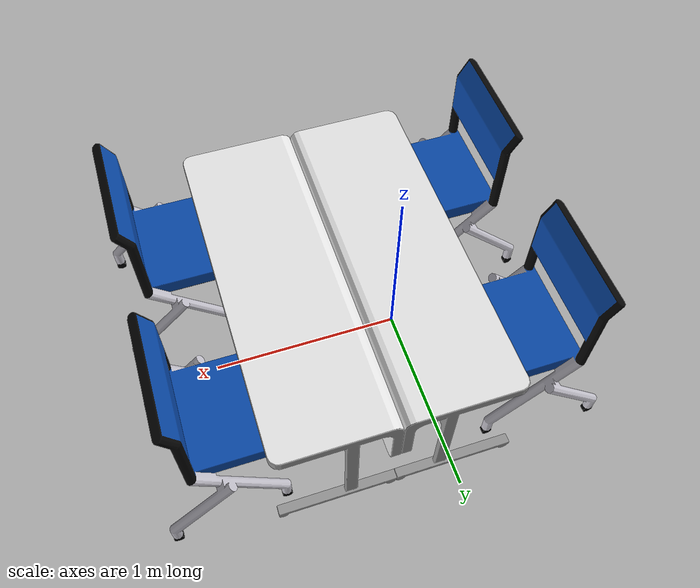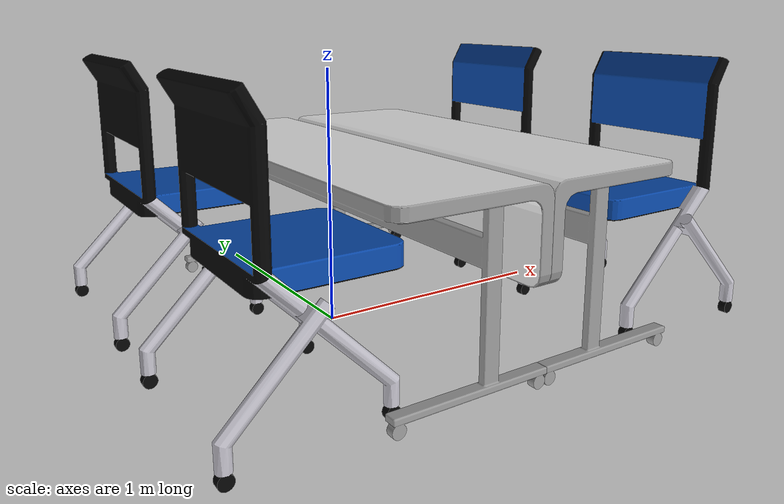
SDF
<?xml version='1.0'?>
<sdf version="1.6">
  <model name="table_set">
    <self_collide>true</self_collide>
    <link name="long_table1">
      <pose>0 0 0 0 0 0</pose>
      <inertial>
        <pose>0.087 0 0.587 0 0 0</pose>
        <mass>9.1</mass>
        <inertia>
          <ixx>2.7818</ixx>
          <ixy>0.0</ixy>
          <ixz>0.0766</ixz>
          <iyy>0.4542</iyy>
          <iyz>0.0</iyz>
          <izz>2.9349</izz>
        </inertia>
      </inertial>
      <collision name="collision">
        <geometry>
          <mesh>
            <uri>model://long_table/long_table.dae</uri>
          </mesh>
        </geometry>
      </collision>
      <visual name="visual">
        <geometry>
          <mesh>
            <uri>model://long_table/long_table.dae</uri>
          </mesh>
        </geometry>
      </visual>
    </link>

    <link name="long_table2">
      <pose>0.6 0 0 0 0 3.14</pose>
      <inertial>
        <pose>0.087 0 0.587 0 0 0</pose>
        <mass>9.1</mass>
        <inertia>
          <ixx>2.7818</ixx>
          <ixy>0.0</ixy>
          <ixz>0.0766</ixz>
          <iyy>0.4542</iyy>
          <iyz>0.0</iyz>
          <izz>2.9349</izz>
        </inertia>
      </inertial>
      <collision name="collision">
        <geometry>
          <mesh>
            <uri>model://long_table/long_table.dae</uri>
          </mesh>
        </geometry>
      </collision>
      <visual name="visual">
        <geometry>
          <mesh>
            <uri>model://long_table/long_table.dae</uri>
          </mesh>
        </geometry>
      </visual>
    </link>

    <link name="chair_link1">
      <pose>-0.4 -0.5 0 0 0 0</pose>
      <inertial>
        <pose>-0.084 0 0.572 0 0 0</pose>
        <mass>3.5</mass>
        <inertia>
          <ixx>1.4596</ixx>
          <ixy>0.0</ixy>
          <ixz>0.2280</ixz>
          <iyy>1.4595</iyy>
          <iyz>0.0</iyz>
          <izz>0.2478</izz>
        </inertia>
      </inertial>
      <collision name="collision">
        <geometry>
          <mesh>
            <uri>model://chair/chair.dae</uri>
          </mesh>
        </geometry>
      </collision>
      <visual name="visual">
        <geometry>
          <mesh>
            <uri>model://chair/chair.dae</uri>
          </mesh>
        </geometry>
      </visual>
    </link>

    <link name="chair_link2">
      <pose>-0.4 0.5 0 0 0 0</pose>
      <inertial>
        <pose>-0.084 0 0.572 0 0 0</pose>
        <mass>3.5</mass>
        <inertia>
          <ixx>1.4596</ixx>
          <ixy>0.0</ixy>
          <ixz>0.2280</ixz>
          <iyy>1.4595</iyy>
          <iyz>0.0</iyz>
          <izz>0.2478</izz>
        </inertia>
      </inertial>
      <collision name="collision">
        <geometry>
          <mesh>
            <uri>model://chair/chair.dae</uri>
          </mesh>
        </geometry>
      </collision>
      <visual name="visual">
        <geometry>
          <mesh>
            <uri>model://chair/chair.dae</uri>
          </mesh>
        </geometry>
      </visual>
    </link>

    <link name="chair_link3">
      <pose>1 -0.5 0 0 0 3.14</pose>
      <inertial>
        <pose>-0.084 0 0.572 0 0 0</pose>
        <mass>3.5</mass>
        <inertia>
          <ixx>1.4596</ixx>
          <ixy>0.0</ixy>
          <ixz>0.2280</ixz>
          <iyy>1.4595</iyy>
          <iyz>0.0</iyz>
          <izz>0.2478</izz>
        </inertia>
      </inertial>
      <collision name="collision">
        <geometry>
          <mesh>
            <uri>model://chair/chair.dae</uri>
          </mesh>
        </geometry>
      </collision>
      <visual name="visual">
        <geometry>
          <mesh>
            <uri>model://chair/chair.dae</uri>
          </mesh>
        </geometry>
      </visual>
    </link>

    <link name="chair_link4">
      <pose>1 0.5 0 0 0 3.14</pose>
      <inertial>
        <pose>-0.084 0 0.572 0 0 0</pose>
        <mass>3.5</mass>
        <inertia>
          <ixx>1.4596</ixx>
          <ixy>0.0</ixy>
          <ixz>0.2280</ixz>
          <iyy>1.4595</iyy>
          <iyz>0.0</iyz>
          <izz>0.2478</izz>
        </inertia>
      </inertial>
      <collision name="collision">
        <geometry>
          <mesh>
            <uri>model://chair/chair.dae</uri>
          </mesh>
        </geometry>
      </collision>
      <visual name="visual">
        <geometry>
          <mesh>
            <uri>model://chair/chair.dae</uri>
          </mesh>
        </geometry>
      </visual>
    </link>
  </model>
</sdf>
